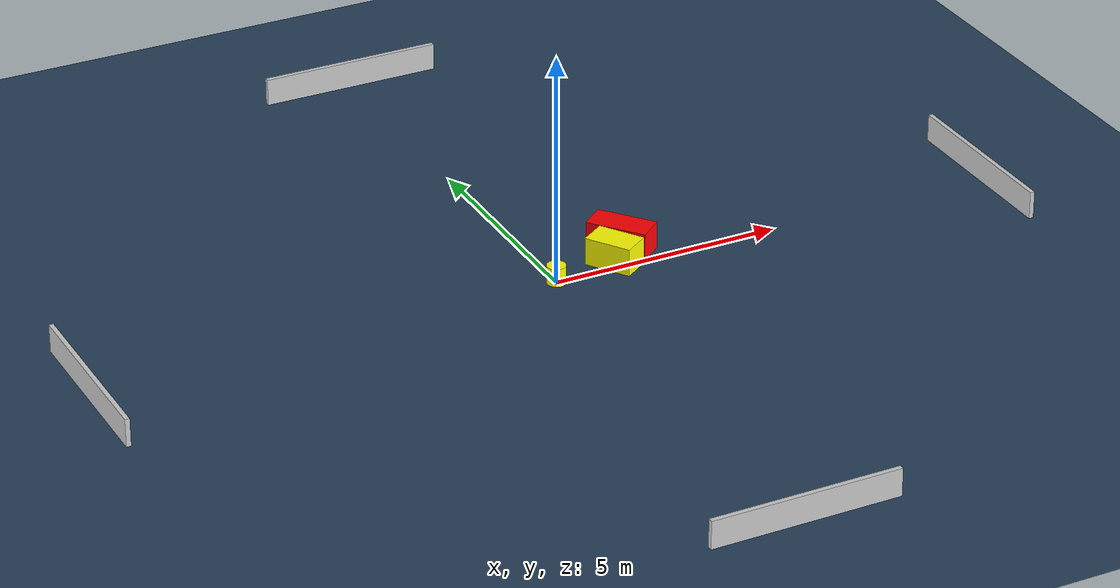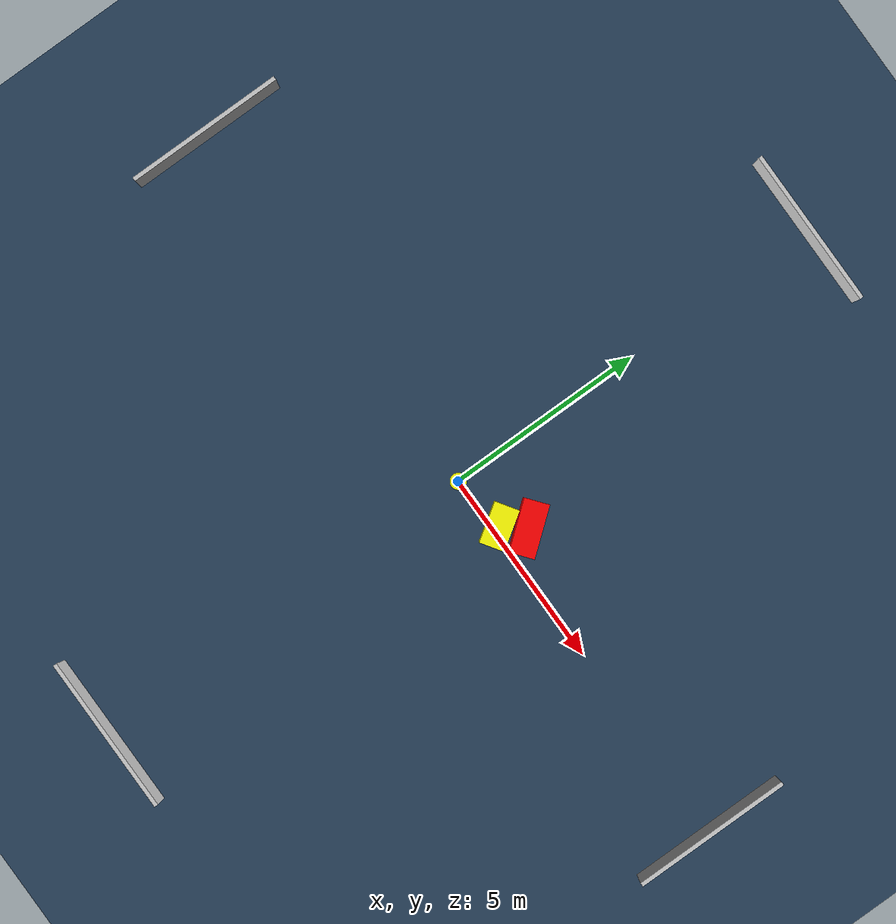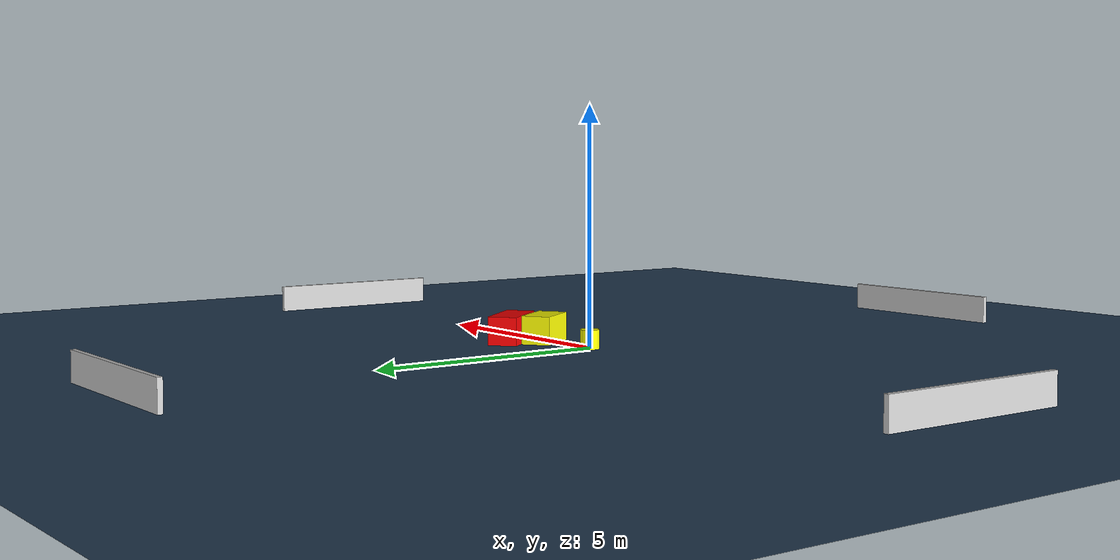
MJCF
<?xml version="1.0" ?>
<mujoco model="generated_environment">
  <option timestep="0.01" integrator="RK4" cone="elliptic"/>
  <default>
    <geom density="1"/>
  </default>
  <asset>
    <texture builtin="gradient" height="3072" name="skybox" rgb1="0.3 0.5 0.7" rgb2="0 0 0" type="skybox" width="512"/>
    <texture builtin="checker" height="300" name="groundplane" rgb1="0.2 0.3 0.4" rgb2="0.1 0.2 0.3" type="2d" width="300"/>
    <material name="groundplane" reflectance="0.2" texrepeat="5 5" texture="groundplane"/>
  </asset>
  <worldbody>
    <light dir="0 0 -1" directional="true" pos="0 0 1.5"/>
    <geom condim="3" friction="0.5 0.005 0.001" material="groundplane" name="floor" pos="0 0 0" size="0 0 0.05" type="plane"/>
    <body name="walls">
      <geom name="wall_1" condim="4" pos="-10.0 0.0 0.3" rgba="0.800000011920929 0.800000011920929 0.800000011920929 1.0" size="0.05 2.0 0.3" type="box"/>
      <geom name="wall_2" condim="4" pos="10.0 0.0 0.3" rgba="0.800000011920929 0.800000011920929 0.800000011920929 1.0" size="0.05 2.0 0.3" type="box"/>
      <geom name="wall_3" condim="4" pos="0.0 -10.0 0.3" rgba="0.800000011920929 0.800000011920929 0.800000011920929 1.0" size="2.0 0.05 0.3" type="box"/>
      <geom name="wall_4" condim="4" pos="0.0 10.0 0.3" rgba="0.800000011920929 0.800000011920929 0.800000011920929 1.0" size="2.0 0.05 0.3" type="box"/>
    </body>
    <body name="robot">
      <joint name="joint_x" type="slide" pos="0 0 0" axis="1 0 0"/>
      <joint name="joint_y" type="slide" pos="0 0 0" axis="0 1 0"/>
      <geom name="robot" type="cylinder" pos="0.0 0.0 0.2" size="0.2 0.2 0.0" mass="5.0" friction="1.0 0.005 0.0001" condim="4" rgba="1.0 1.0 0.0 1.0"/>
    </body>
    <body name="obstacle_1_movable">
      <geom name="obstacle_1_movable" condim="4" pos="1.3982123893304046 0.16307260871598292 0.3" euler="0 0 213.5621482886999" friction="0.0 0.005 0.001" rgba="1.0 1.0 0.0 1.0" size="0.31013328491291725 0.510625394629088 0.3" type="box" mass="0.1"/>
      <joint type="free"/>
    </body>
    <body name="obstacle_2_static">
      <geom name="obstacle_2_static" condim="4" pos="1.8368629743966185 0.6946976931020097 0.3" euler="0 0 218.62659747163025" friction="0.0 0.005 0.001" rgba="1.0 0.0 0.0 1.0" size="0.30933247265808134 0.6560933032847425 0.3" type="box"/>
    </body>
  </worldbody>
  <actuator>
    <motor name="actuator_x" joint="joint_x" gear="1" ctrlrange="-1 1"/>
    <motor name="actuator_y" joint="joint_y" gear="1" ctrlrange="-1 1"/>
  </actuator>
</mujoco>
